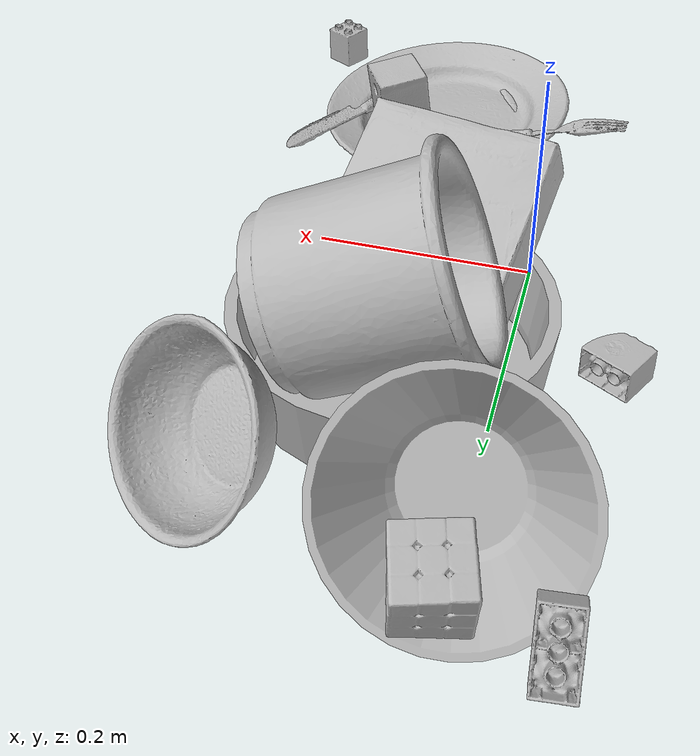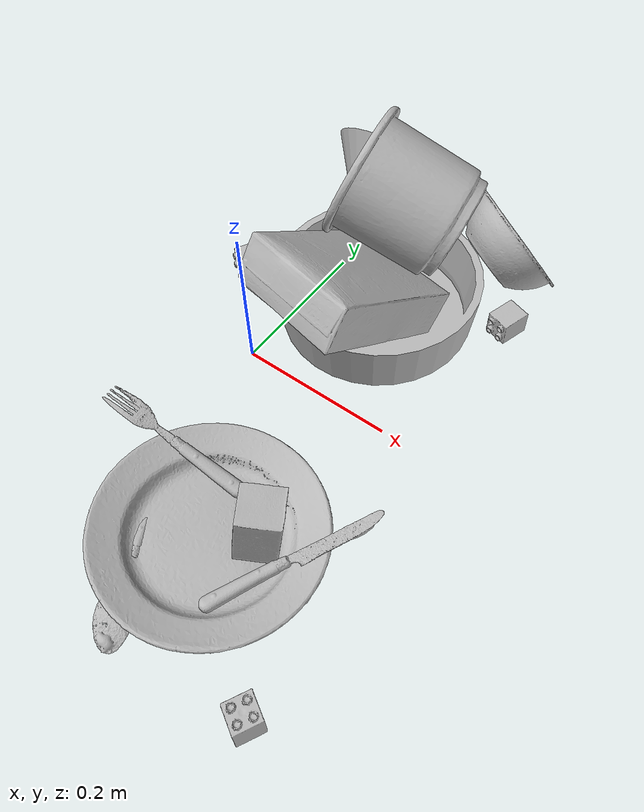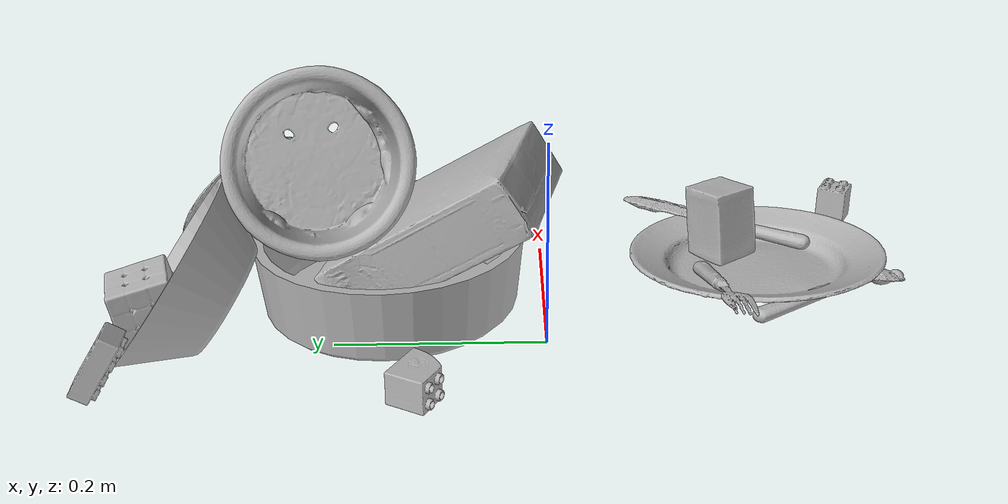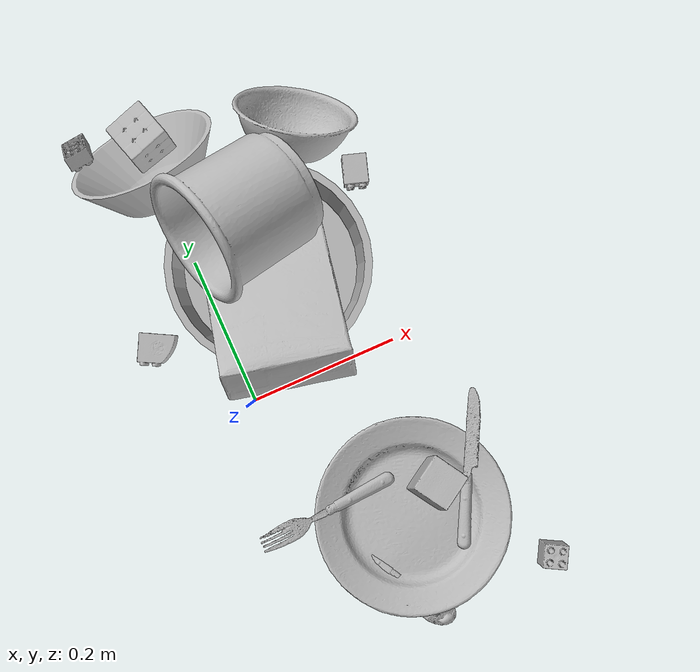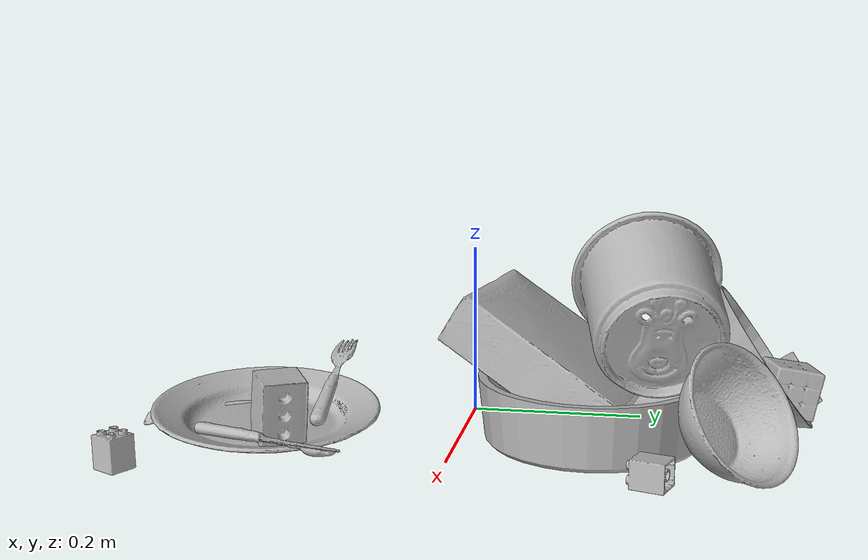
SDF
<sdf version="1.4">
  <world name="default">
    <light name="light1" type="point">
      <pose>0 0 1 0 0 0</pose>
      <diffuse>3 3 3 1</diffuse>
      <specular>3 3 3 1</specular>
    </light>
    <light name="light2" type="point">
      <pose>0 0.5 2 0 0 0</pose>
      <diffuse>1 1 1 1</diffuse>
      <specular>1 1 1 1</specular>
    </light>
    <light name="light3" type="point">
      <pose>0 0.5 2 0 0 0</pose>
      <diffuse>3 3 3 1</diffuse>
      <specular>3 3 3 1</specular>
    </light>
    <scene>
      <ambient>0.7 0.7 0.7</ambient>
    </scene>
    <model name="plate1">
      <link name="link_plate1">
        <collision name="default">
          <geometry>
            <mesh>
              <uri>model://plate/collision_meshes/collision.obj</uri>
              <scale>1.0 1.0 1.0</scale>
            </mesh>
          </geometry>
          <surface>
            <friction>
              <ode>
                <mu>0.5</mu>
                <mu2>0.5</mu2>
              </ode>
            </friction>
          <contact>
        <ode>
            <max_vel>0</max_vel>
            <min_depth>0.0001</min_depth>
            <kp>1e8</kp>
        </ode>
    </contact></surface>
        </collision>
        <visual name="default">
          <geometry>
            <mesh>
              <uri>model://plate/visual_meshes/visual.dae</uri>
              <scale>1.0 1.0 1.0</scale>
            </mesh>
          </geometry>
        </visual>
        <inertial>
          <mass>0.14927330613136292</mass>
          <pose>-0.0006044599576853216 0.00027825793949887156 -0.0010561984963715076 0.0022187657602494516 -0.0032254905015569333 0.45261542380491104</pose>
          <inertia>
            <ixx>0.0006983033</ixx>
            <iyy>0.0006916243</iyy>
            <izz>0.0013657772</izz>
            <ixy>0</ixy>
            <ixz>0</ixz>
            <iyz>0</iyz>
          </inertia>
        </inertial>
      </link>
      <pose>0.12824071943759918 -0.22256025671958923 0.020778320729732513 -0.040397100143085854 0.08299965383679432 0.08133784207658439</pose>
    </model>
    <model name="plate2">
      <link name="link_plate2">
        <collision name="default">
          <geometry>
            <mesh>
              <uri>model://pan_tefal/collision_meshes/collision.obj</uri>
              <scale>1.0 1.0 1.0</scale>
            </mesh>
          </geometry>
          <surface>
            <friction>
              <ode>
                <mu>0.5</mu>
                <mu2>0.5</mu2>
              </ode>
            </friction>
          <contact>
        <ode>
            <max_vel>0</max_vel>
            <min_depth>0.0001</min_depth>
            <kp>1e8</kp>
        </ode>
    </contact></surface>
        </collision>
        <visual name="default">
          <geometry>
            <mesh>
              <uri>model://pan_tefal/visual_meshes/visual.dae</uri>
              <scale>1.0 1.0 1.0</scale>
            </mesh>
          </geometry>
        </visual>
        <inertial>
          <mass>1.1722657680511475</mass>
          <pose>-0.00018002268916461617 3.2786720112198964e-05 -0.008514933288097382 0.0008190189984333748 -0.0003301390782503885 -0.3318520141268409</pose>
          <inertia>
            <ixx>0.008092094</ixx>
            <iyy>0.008144264</iyy>
            <izz>0.014895983</izz>
            <ixy>0</ixy>
            <ixz>0</ixz>
            <iyz>0</iyz>
          </inertia>
        </inertial>
      </link>
      <pose>0.08929984271526337 0.1521013379096985 0.03805004060268402 5.082073003037546e-07 1.1134842309445878e-06 1.495230542203493</pose>
    </model>
    <model name="bowl1">
      <link name="link_bowl1">
        <collision name="default">
          <geometry>
            <mesh>
              <uri>model://bowl_a/collision_meshes/collision.obj</uri>
              <scale>1.0 1.0 1.0</scale>
            </mesh>
          </geometry>
          <surface>
            <friction>
              <ode>
                <mu>0.5</mu>
                <mu2>0.5</mu2>
              </ode>
            </friction>
          <contact>
        <ode>
            <max_vel>0</max_vel>
            <min_depth>0.0001</min_depth>
            <kp>1e8</kp>
        </ode>
    </contact></surface>
        </collision>
        <visual name="default">
          <geometry>
            <mesh>
              <uri>model://bowl_a/visual_meshes/visual.dae</uri>
              <scale>1.0 1.0 1.0</scale>
            </mesh>
          </geometry>
        </visual>
        <inertial>
          <mass>0.2988097667694092</mass>
          <pose>0.0002786743571050465 4.731365334009752e-05 -0.0013765293406322598 -0.0009805349169279892 -0.001093820822183951 -0.19123530183129564</pose>
          <inertia>
            <ixx>0.00085072505</ixx>
            <iyy>0.00085594796</iyy>
            <izz>0.0015130473</izz>
            <ixy>0</ixy>
            <ixz>0</ixz>
            <iyz>0</iyz>
          </inertia>
        </inertial>
      </link>
      <pose>0.0006006896146573126 0.32041501998901367 0.06412011384963989 0.7727849877757957 0.6528847035844636 2.6437388465178144</pose>
    </model>
    <model name="bowl2">
      <link name="link_bowl2">
        <collision name="default">
          <geometry>
            <mesh>
              <uri>model://bowl/collision_meshes/collision.obj</uri>
              <scale>1.0 1.0 1.0</scale>
            </mesh>
          </geometry>
          <surface>
            <friction>
              <ode>
                <mu>0.5</mu>
                <mu2>0.5</mu2>
              </ode>
            </friction>
          <contact>
        <ode>
            <max_vel>0</max_vel>
            <min_depth>0.0001</min_depth>
            <kp>1e8</kp>
        </ode>
    </contact></surface>
        </collision>
        <visual name="default">
          <geometry>
            <mesh>
              <uri>model://bowl/visual_meshes/visual.dae</uri>
              <scale>1.0 1.0 1.0</scale>
            </mesh>
          </geometry>
        </visual>
        <inertial>
          <mass>0.05087859928607941</mass>
          <pose>0.00020445352129172534 -0.001030206447467208 -0.0008042655535973608 -0.015764084400621287 0.014546790156403148 0.7140405806030785</pose>
          <inertia>
            <ixx>0.0001168722</ixx>
            <iyy>0.00011426082</iyy>
            <izz>0.0001966192</izz>
            <ixy>0</ixy>
            <ixz>0</ixz>
            <iyz>0</iyz>
          </inertia>
        </inertial>
      </link>
      <pose>0.18833817541599274 0.2996259927749634 0.057368624955415726 -0.9360714106187976 -0.38440514108674195 -0.8613659746806889</pose>
    </model>
    <model name="silverware1">
      <link name="link_silverware1">
        <collision name="default">
          <geometry>
            <mesh>
              <uri>model://spoon/collision_meshes/collision.obj</uri>
              <scale>1.0 1.0 1.0</scale>
            </mesh>
          </geometry>
          <surface>
            <friction>
              <ode>
                <mu>0.5</mu>
                <mu2>0.5</mu2>
              </ode>
            </friction>
          <contact>
        <ode>
            <max_vel>0</max_vel>
            <min_depth>0.0001</min_depth>
            <kp>1e8</kp>
        </ode>
    </contact></surface>
        </collision>
        <visual name="default">
          <geometry>
            <mesh>
              <uri>model://spoon/visual_meshes/visual.dae</uri>
              <scale>1.0 1.0 1.0</scale>
            </mesh>
          </geometry>
        </visual>
        <inertial>
          <mass>0.031133336946368217</mass>
          <pose>-0.005526311229914427 -0.001603417214937508 -0.000727165665011853 0.03521724372111935 -0.03906583963771688 0.006150613707428126</pose>
          <inertia>
            <ixx>1.7316867e-06</ixx>
            <iyy>0.00011846133</iyy>
            <izz>0.00011931534</izz>
            <ixy>0</ixy>
            <ixz>0</ixz>
            <iyz>0</iyz>
          </inertia>
        </inertial>
      </link>
      <pose>0.07572296261787415 -0.29130810499191284 0.010131356306374073 3.105508079924051 -0.061978305825296905 -1.0844218297094053</pose>
    </model>
    <model name="box1">
      <link name="link_box1">
        <collision name="default">
          <geometry>
            <mesh>
              <uri>model://cracker_box/collision_meshes/collision.obj</uri>
              <scale>1.0 1.0 1.0</scale>
            </mesh>
          </geometry>
          <surface>
            <friction>
              <ode>
                <mu>0.5</mu>
                <mu2>0.5</mu2>
              </ode>
            </friction>
          <contact>
        <ode>
            <max_vel>0</max_vel>
            <min_depth>0.0001</min_depth>
            <kp>1e8</kp>
        </ode>
    </contact></surface>
        </collision>
        <visual name="default">
          <geometry>
            <mesh>
              <uri>model://cracker_box/visual_meshes/visual.dae</uri>
              <scale>1.0 1.0 1.0</scale>
            </mesh>
          </geometry>
        </visual>
        <inertial>
          <mass>2.900710344314575</mass>
          <pose>0.0009464158210903406 0.00025434247800149024 -0.0017029534792527556 -0.0003162075379034469 -0.011106488669169442 0.0025467947685016775</pose>
          <inertia>
            <ixx>0.007378111</ixx>
            <iyy>0.012182713</iyy>
            <izz>0.01738585</izz>
            <ixy>0</ixy>
            <ixz>0</ixz>
            <iyz>0</iyz>
          </inertia>
        </inertial>
      </link>
      <pose>0.076210618019104 0.09748575836420059 0.08958753943443298 3.1386317464644087 -0.5672880873023155 -1.768319951261007</pose>
    </model>
    <model name="box2">
      <link name="link_box2">
        <collision name="default">
          <geometry>
            <mesh>
              <uri>model://rubiks_cube/collision_meshes/collision.obj</uri>
              <scale>1.0 1.0 1.0</scale>
            </mesh>
          </geometry>
          <surface>
            <friction>
              <ode>
                <mu>0.5</mu>
                <mu2>0.5</mu2>
              </ode>
            </friction>
          <contact>
        <ode>
            <max_vel>0</max_vel>
            <min_depth>0.0001</min_depth>
            <kp>1e8</kp>
        </ode>
    </contact></surface>
        </collision>
        <visual name="default">
          <geometry>
            <mesh>
              <uri>model://rubiks_cube/visual_meshes/visual.dae</uri>
              <scale>1.0 1.0 1.0</scale>
            </mesh>
          </geometry>
        </visual>
        <inertial>
          <mass>0.28670012950897217</mass>
          <pose>2.6721039830590598e-05 5.2569666877388954e-05 -7.264316082000732e-06 -0.05467310906580907 -0.09814045067101686 -0.03445712671449578</pose>
          <inertia>
            <ixx>0.00015842107</ixx>
            <iyy>0.0001576823</iyy>
            <izz>0.00015973386</izz>
            <ixy>0</ixy>
            <ixz>0</ixz>
            <iyz>0</iyz>
          </inertia>
        </inertial>
      </link>
      <pose>0.005359194707125425 0.3711771070957184 0.044736143201589584 -2.9511121359243577 0.019447962848444293 -2.8784622938368645</pose>
    </model>
    <model name="cup1">
      <link name="link_cup1">
        <collision name="default">
          <geometry>
            <mesh>
              <uri>model://g_cups/collision_meshes/collision.obj</uri>
              <scale>2.0 2.0 2.0</scale>
            </mesh>
          </geometry>
          <surface>
            <friction>
              <ode>
                <mu>0.5</mu>
                <mu2>0.5</mu2>
              </ode>
            </friction>
          <contact>
        <ode>
            <max_vel>0</max_vel>
            <min_depth>0.0001</min_depth>
            <kp>1e8</kp>
        </ode>
    </contact></surface>
        </collision>
        <visual name="default">
          <geometry>
            <mesh>
              <uri>model://g_cups/visual_meshes/visual.dae</uri>
              <scale>2.0 2.0 2.0</scale>
            </mesh>
          </geometry>
        </visual>
        <inertial>
          <mass>0.7979594469070435</mass>
          <pose>-0.001589252962730825 -8.413367322646081e-05 -0.004265873227268457 -0.2138242542550812 -0.3141046905663657 0.3112069095441374</pose>
          <inertia>
            <ixx>0.0037255902</ixx>
            <iyy>0.003712916</iyy>
            <izz>0.0038590694</izz>
            <ixy>0</ixy>
            <ixz>0</ixz>
            <iyz>0</iyz>
          </inertia>
        </inertial>
      </link>
      <pose>0.08598213642835617 0.2163519412279129 0.15036754310131073 -1.2240472683988612 -0.029618849209310186 1.7547691945658583</pose>
    </model>
    <model name="silverware2">
      <link name="link_silverware2">
        <collision name="default">
          <geometry>
            <mesh>
              <uri>model://fork/collision_meshes/collision.obj</uri>
              <scale>1.0 1.0 1.0</scale>
            </mesh>
          </geometry>
          <surface>
            <friction>
              <ode>
                <mu>0.5</mu>
                <mu2>0.5</mu2>
              </ode>
            </friction>
          <contact>
        <ode>
            <max_vel>0</max_vel>
            <min_depth>0.0001</min_depth>
            <kp>1e8</kp>
        </ode>
    </contact></surface>
        </collision>
        <visual name="default">
          <geometry>
            <mesh>
              <uri>model://fork/visual_meshes/visual.dae</uri>
              <scale>1.0 1.0 1.0</scale>
            </mesh>
          </geometry>
        </visual>
        <inertial>
          <mass>0.026295984163880348</mass>
          <pose>-0.02957003563642502 0.0004658822435885668 0.0003218861238565296 -0.013551585765180826 -0.010977835012843383 0.014453895551669751</pose>
          <inertia>
            <ixx>9.2182285e-07</ixx>
            <iyy>6.865125e-05</iyy>
            <izz>6.9063564e-05</izz>
            <ixy>0</ixy>
            <ixz>0</ixz>
            <iyz>0</iyz>
          </inertia>
        </inertial>
      </link>
      <pose>0.031778667122125626 -0.16939280927181244 0.041070904582738876 3.079996689327043 -0.28915600893413096 -3.0947011353600877</pose>
    </model>
    <model name="silverware3">
      <link name="link_silverware3">
        <collision name="default">
          <geometry>
            <mesh>
              <uri>model://knife/collision_meshes/collision.obj</uri>
              <scale>1.0 1.0 1.0</scale>
            </mesh>
          </geometry>
          <surface>
            <friction>
              <ode>
                <mu>0.5</mu>
                <mu2>0.5</mu2>
              </ode>
            </friction>
          <contact>
        <ode>
            <max_vel>0</max_vel>
            <min_depth>0.0001</min_depth>
            <kp>1e8</kp>
        </ode>
    </contact></surface>
        </collision>
        <visual name="default">
          <geometry>
            <mesh>
              <uri>model://knife/visual_meshes/visual.dae</uri>
              <scale>1.0 1.0 1.0</scale>
            </mesh>
          </geometry>
        </visual>
        <inertial>
          <mass>0.018686598166823387</mass>
          <pose>-0.023785265162587166 0.001527512213215232 5.06201722600963e-05 0.0730586728597059 0.01724841756758314 -0.007409823953988089</pose>
          <inertia>
            <ixx>5.3040145e-07</ixx>
            <iyy>7.1790884e-05</iyy>
            <izz>7.1961695e-05</izz>
            <ixy>0</ixy>
            <ixz>0</ixz>
            <iyz>0</iyz>
          </inertia>
        </inertial>
      </link>
      <pose>0.22211378812789917 -0.19609013199806213 0.023376960307359695 -0.22716508504905092 -0.06830529041688303 1.0966739867821367</pose>
    </model>
    <model name="toy1">
      <link name="link_toy1">
        <collision name="default">
          <geometry>
            <mesh>
              <uri>model://d_lego_duplo/collision_meshes/collision.obj</uri>
              <scale>1.0 1.0 1.0</scale>
            </mesh>
          </geometry>
          <surface>
            <friction>
              <ode>
                <mu>0.5</mu>
                <mu2>0.5</mu2>
              </ode>
            </friction>
          <contact>
        <ode>
            <max_vel>0</max_vel>
            <min_depth>0.0001</min_depth>
            <kp>1e8</kp>
        </ode>
    </contact></surface>
        </collision>
        <visual name="default">
          <geometry>
            <mesh>
              <uri>model://d_lego_duplo/visual_meshes/visual.dae</uri>
              <scale>1.0 1.0 1.0</scale>
            </mesh>
          </geometry>
        </visual>
        <inertial>
          <mass>0.057973701506853104</mass>
          <pose>0.002830564510077238 0.0001636612432776019 0.000858980929479003 0.08010949801199577 -0.38355255965562274 0.0010296774355632512</pose>
          <inertia>
            <ixx>1.1222855e-05</ixx>
            <iyy>1.5928275e-05</iyy>
            <izz>1.5360585e-05</izz>
            <ixy>0</ixy>
            <ixz>0</ixz>
            <iyz>0</iyz>
          </inertia>
        </inertial>
      </link>
      <pose>-0.09090357273817062 0.11312262713909149 0.016380643472075462 -1.5707926920890403 -0.008039760709501497 2.6478895688408515</pose>
    </model>
    <model name="toy2">
      <link name="link_toy2">
        <collision name="default">
          <geometry>
            <mesh>
              <uri>model://c_lego_duplo/collision_meshes/collision.obj</uri>
              <scale>1.0 1.0 1.0</scale>
            </mesh>
          </geometry>
          <surface>
            <friction>
              <ode>
                <mu>0.5</mu>
                <mu2>0.5</mu2>
              </ode>
            </friction>
          <contact>
        <ode>
            <max_vel>0</max_vel>
            <min_depth>0.0001</min_depth>
            <kp>1e8</kp>
        </ode>
    </contact></surface>
        </collision>
        <visual name="default">
          <geometry>
            <mesh>
              <uri>model://c_lego_duplo/visual_meshes/visual.dae</uri>
              <scale>1.0 1.0 1.0</scale>
            </mesh>
          </geometry>
        </visual>
        <inertial>
          <mass>0.03295557200908661</mass>
          <pose>0.00031645927811041474 0.0001946454867720604 0.0010453149443492293 -0.011520797378012098 0.005900082234647494 0.03110035414112205</pose>
          <inertia>
            <ixx>1.2681916e-05</ixx>
            <iyy>4.0510618e-06</iyy>
            <izz>1.4820123e-05</izz>
            <ixy>0</ixy>
            <ixz>0</ixz>
            <iyz>0</iyz>
          </inertia>
        </inertial>
      </link>
      <pose>-0.07980822026729584 0.38911008834838867 0.031019870191812515 -2.133205284885664 -0.022600430971728293 -3.0309189158575065</pose>
    </model>
    <model name="toy3">
      <link name="link_toy3">
        <collision name="default">
          <geometry>
            <mesh>
              <uri>model://foam_brick/collision_meshes/collision.obj</uri>
              <scale>1.0 1.0 1.0</scale>
            </mesh>
          </geometry>
          <surface>
            <friction>
              <ode>
                <mu>0.5</mu>
                <mu2>0.5</mu2>
              </ode>
            </friction>
          <contact>
        <ode>
            <max_vel>0</max_vel>
            <min_depth>0.0001</min_depth>
            <kp>1e8</kp>
        </ode>
    </contact></surface>
        </collision>
        <visual name="default">
          <geometry>
            <mesh>
              <uri>model://foam_brick/visual_meshes/visual.dae</uri>
              <scale>1.0 1.0 1.0</scale>
            </mesh>
          </geometry>
        </visual>
        <inertial>
          <mass>0.2026180773973465</mass>
          <pose>-0.00025224717683158815 0.0003458433202467859 -0.0002532101352699101 -0.2940154265809752 0.017274439844268085 -0.0007449877964386924</pose>
          <inertia>
            <ixx>8.850737e-05</ixx>
            <iyy>0.00014130655</iyy>
            <izz>0.00014310238</izz>
            <ixy>0</ixy>
            <ixz>0</ixz>
            <iyz>0</iyz>
          </inertia>
        </inertial>
      </link>
      <pose>0.17384542524814606 -0.19297832250595093 0.044591136276721954 -2.898196024189171 1.4389250282512027 -2.346564109022219</pose>
    </model>
    <model name="toy4">
      <link name="link_toy4">
        <collision name="default">
          <geometry>
            <mesh>
              <uri>model://f_lego_duplo/collision_meshes/collision.obj</uri>
              <scale>1.0 1.0 1.0</scale>
            </mesh>
          </geometry>
          <surface>
            <friction>
              <ode>
                <mu>0.5</mu>
                <mu2>0.5</mu2>
              </ode>
            </friction>
          <contact>
        <ode>
            <max_vel>0</max_vel>
            <min_depth>0.0001</min_depth>
            <kp>1e8</kp>
        </ode>
    </contact></surface>
        </collision>
        <visual name="default">
          <geometry>
            <mesh>
              <uri>model://f_lego_duplo/visual_meshes/visual.dae</uri>
              <scale>1.0 1.0 1.0</scale>
            </mesh>
          </geometry>
        </visual>
        <inertial>
          <mass>0.026114314794540405</mass>
          <pose>2.3694528863416053e-05 0.00013393153494689614 0.001883787801489234 0.02983849389432246 -0.014425286210530337 -0.675657453158783</pose>
          <inertia>
            <ixx>5.5180976e-06</ixx>
            <iyy>5.5672576e-06</iyy>
            <izz>4.7899434e-06</izz>
            <ixy>0</ixy>
            <ixz>0</ixz>
            <iyz>0</iyz>
          </inertia>
        </inertial>
      </link>
      <pose>0.2430875152349472 0.2223588228225708 0.016501998528838158 -1.5707963334570312 1.3480223547972552e-06 2.82568836537188</pose>
    </model>
    <model name="toy5">
      <link name="link_toy5">
        <collision name="default">
          <geometry>
            <mesh>
              <uri>model://b_lego_duplo/collision_meshes/collision.obj</uri>
              <scale>1.0 1.0 1.0</scale>
            </mesh>
          </geometry>
          <surface>
            <friction>
              <ode>
                <mu>0.5</mu>
                <mu2>0.5</mu2>
              </ode>
            </friction>
          <contact>
        <ode>
            <max_vel>0</max_vel>
            <min_depth>0.0001</min_depth>
            <kp>1e8</kp>
        </ode>
    </contact></surface>
        </collision>
        <visual name="default">
          <geometry>
            <mesh>
              <uri>model://b_lego_duplo/visual_meshes/visual.dae</uri>
              <scale>1.0 1.0 1.0</scale>
            </mesh>
          </geometry>
        </visual>
        <inertial>
          <mass>0.0471348837018013</mass>
          <pose>-0.00011053068010369316 -9.152583515970036e-06 0.0019294292433187366 -0.037494549971735465 -0.026354388193955382 0.45188781154390406</pose>
          <inertia>
            <ixx>9.646508e-06</ixx>
            <iyy>9.711356e-06</iyy>
            <izz>8.594722e-06</izz>
            <ixy>0</ixy>
            <ixz>0</ixz>
            <iyz>0</iyz>
          </inertia>
        </inertial>
      </link>
      <pose>0.2768141031265259 -0.34458765387535095 0.021814998239278793 2.340021836586831e-07 5.374640951749637e-07 2.636449277083098</pose>
    </model>
  <physics type="ode">
      <max_contacts>50</max_contacts>
      <ode>
        <solver>
          <type>quick</type>
          <iters>75</iters>
        </solver>
        <constraints>
          <contact_max_correcting_vel>0</contact_max_correcting_vel>
          <contact_surface_layer>0</contact_surface_layer>
        </constraints>
      </ode>
    </physics></world>
</sdf>
